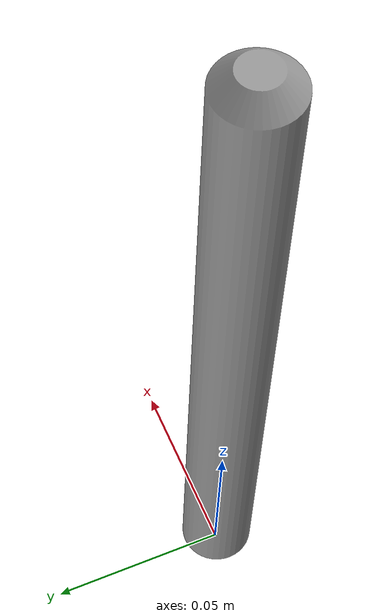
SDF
<?xml version="1.0" ?>
<sdf version="1.6">
    <model name='circle_peg'>
      <pose>0 0 0 1.57 0 0</pose>
      <link name='link'>
        <inertial>
          <mass>1</mass>
          <inertia>
            <ixx>0.166667</ixx>
            <ixy>0</ixy>
            <ixz>0</ixz>
            <iyy>0.166667</iyy>
            <iyz>0</iyz>
            <izz>0.166667</izz>
          </inertia>
          <pose>0 0 0 0 -0 0</pose>
        </inertial>
        <collision name='collision'>
          <geometry>
            <mesh>
              <scale>1 1 1</scale>
	      <uri>model://circle_peg/meshes/circlePeg.STL</uri>
            </mesh>
          </geometry>
          <max_contacts>10</max_contacts>
          <surface>
            <contact>
              <ode/>
            </contact>
            <bounce/>
            <friction>
              <torsional>
                <ode/>
              </torsional>
              <ode/>
            </friction>
          </surface>
        </collision>
        <visual name='visual'>
          <geometry>
            <mesh>
              <scale>1 1 1</scale>
	      <uri>model://circle_peg/meshes/circlePeg.STL</uri>
            </mesh>
          </geometry>
          <material>
            <script>
              <name>Gazebo/Grey</name>
              <uri>file://media/materials/scripts/gazebo.material</uri>
            </script>
          </material>
        </visual>
        <self_collide>0</self_collide>
        <enable_wind>0</enable_wind>
        <kinematic>0</kinematic>
      </link>
    </model>
</sdf>
